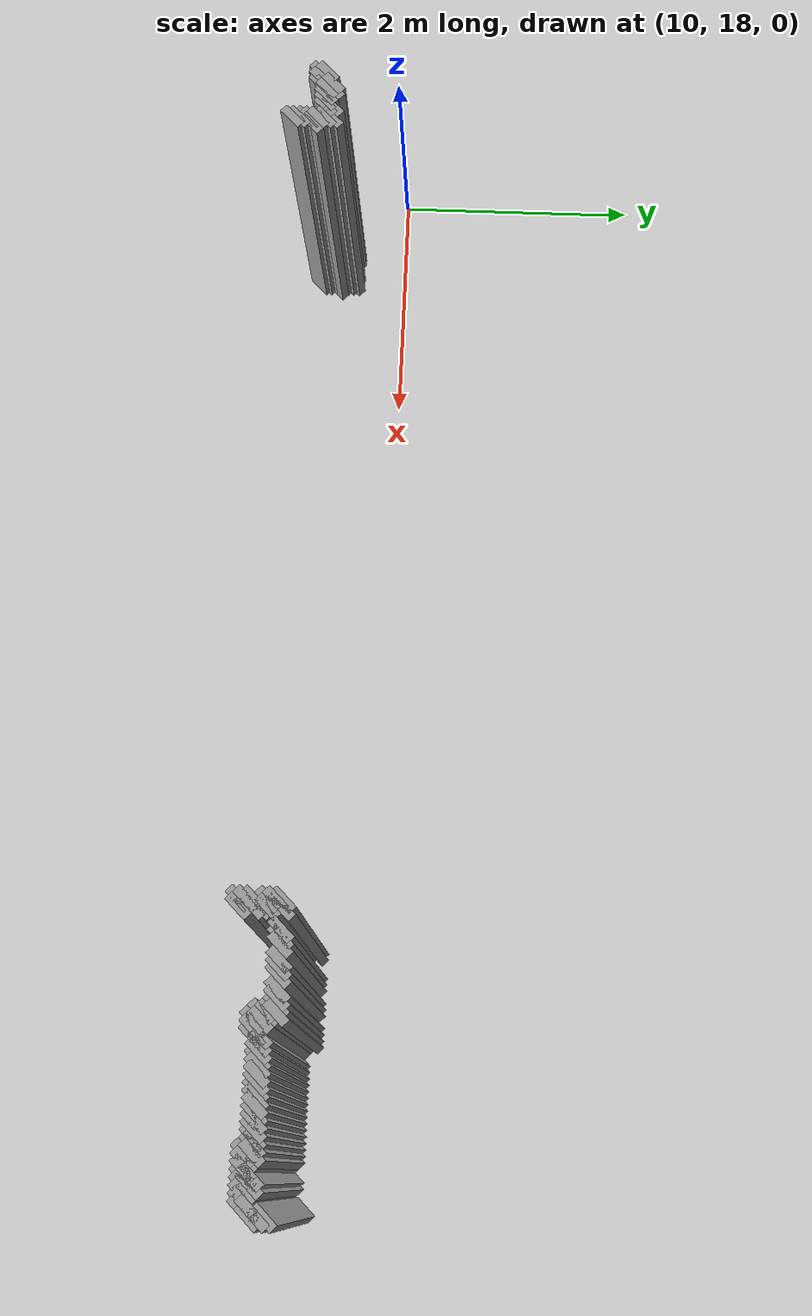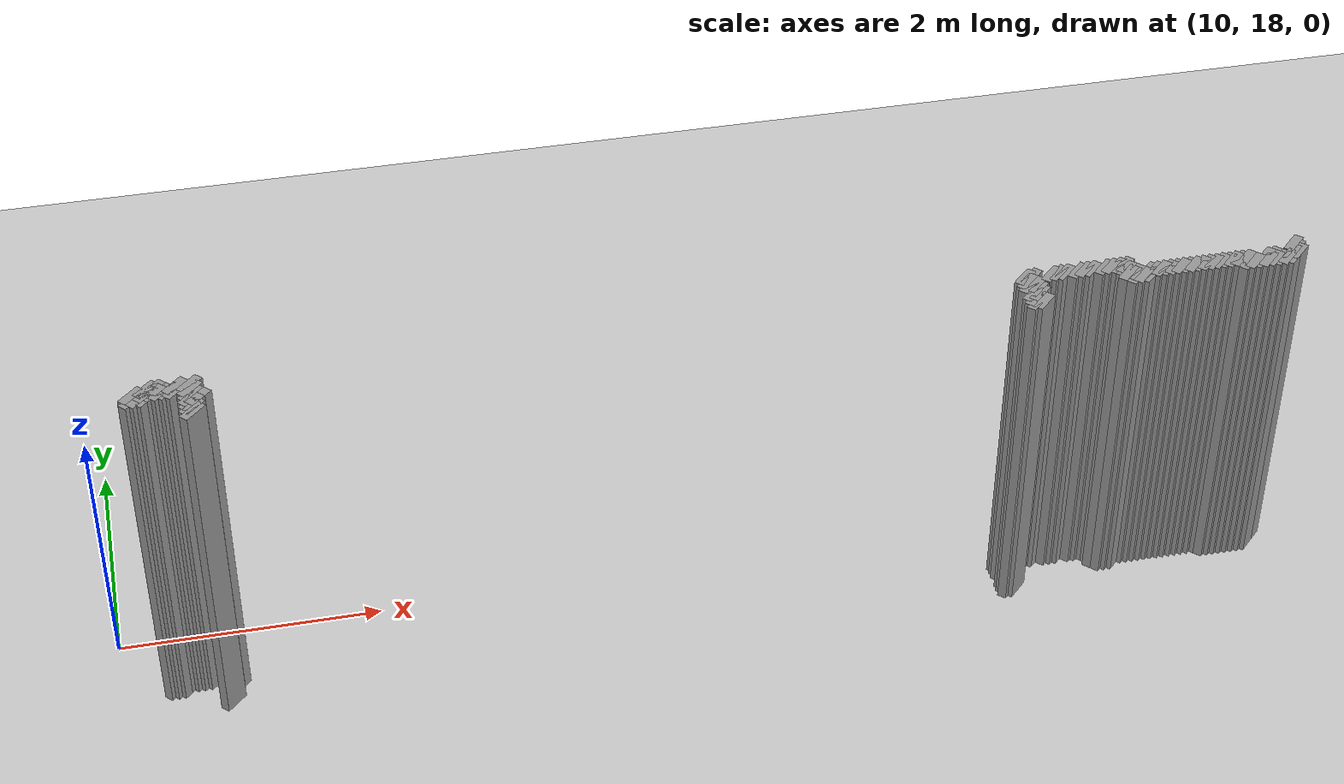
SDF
<sdf version="1.5">
 <world name="default">
  <include><uri>model://ground_plane</uri></include>
  <include><uri>model://sun</uri></include>
  <model name="grey_wall_312">
   <static>1</static>
   <link name="link">
    <pose>10.5 17.55  1.4 0 0 -0.785398163397</pose>
    <collision name="collision"><geometry><box><size>0.0707106781187 .2  2.8</size></box></geometry></collision>
    <visual name="visual">
     <cast_shadows>0</cast_shadows>
     <geometry><box><size>0.0707106781187 .2  2.8</size></box></geometry>
     <material>
      <script>
       <uri>model://grey_wall/materials/scripts</uri>
       <uri>model://grey_wall/materials/textures</uri>
       <name>vrc/grey_wall</name>
      </script>
     </material>
    </visual>
   </link>
  </model>
  <model name="grey_wall_313">
   <static>1</static>
   <link name="link">
    <pose>10.55 17.55  1.4 0 0 -0.785398163397</pose>
    <collision name="collision"><geometry><box><size>0.0707106781187 .2  2.8</size></box></geometry></collision>
    <visual name="visual">
     <cast_shadows>0</cast_shadows>
     <geometry><box><size>0.0707106781187 .2  2.8</size></box></geometry>
     <material>
      <script>
       <uri>model://grey_wall/materials/scripts</uri>
       <uri>model://grey_wall/materials/textures</uri>
       <name>vrc/grey_wall</name>
      </script>
     </material>
    </visual>
   </link>
  </model>
  <model name="grey_wall_314">
   <static>1</static>
   <link name="link">
    <pose>10.7 17.55  1.4 0 0 -0.785398163397</pose>
    <collision name="collision"><geometry><box><size>0.0707106781187 .2  2.8</size></box></geometry></collision>
    <visual name="visual">
     <cast_shadows>0</cast_shadows>
     <geometry><box><size>0.0707106781187 .2  2.8</size></box></geometry>
     <material>
      <script>
       <uri>model://grey_wall/materials/scripts</uri>
       <uri>model://grey_wall/materials/textures</uri>
       <name>vrc/grey_wall</name>
      </script>
     </material>
    </visual>
   </link>
  </model>
  <model name="grey_wall_315">
   <static>1</static>
   <link name="link">
    <pose>10.8 17.55  1.4 0 0 -0.785398163397</pose>
    <collision name="collision"><geometry><box><size>0.0707106781187 .2  2.8</size></box></geometry></collision>
    <visual name="visual">
     <cast_shadows>0</cast_shadows>
     <geometry><box><size>0.0707106781187 .2  2.8</size></box></geometry>
     <material>
      <script>
       <uri>model://grey_wall/materials/scripts</uri>
       <uri>model://grey_wall/materials/textures</uri>
       <name>vrc/grey_wall</name>
      </script>
     </material>
    </visual>
   </link>
  </model>
  <model name="grey_wall_316">
   <static>1</static>
   <link name="link">
    <pose>16.8 17.55  1.4 0 0 -0.785398163397</pose>
    <collision name="collision"><geometry><box><size>0.0707106781187 .2  2.8</size></box></geometry></collision>
    <visual name="visual">
     <cast_shadows>0</cast_shadows>
     <geometry><box><size>0.0707106781187 .2  2.8</size></box></geometry>
     <material>
      <script>
       <uri>model://grey_wall/materials/scripts</uri>
       <uri>model://grey_wall/materials/textures</uri>
       <name>vrc/grey_wall</name>
      </script>
     </material>
    </visual>
   </link>
  </model>
  <model name="grey_wall_317">
   <static>1</static>
   <link name="link">
    <pose>16.85 17.55  1.4 0 0 -0.785398163397</pose>
    <collision name="collision"><geometry><box><size>0.0707106781187 .2  2.8</size></box></geometry></collision>
    <visual name="visual">
     <cast_shadows>0</cast_shadows>
     <geometry><box><size>0.0707106781187 .2  2.8</size></box></geometry>
     <material>
      <script>
       <uri>model://grey_wall/materials/scripts</uri>
       <uri>model://grey_wall/materials/textures</uri>
       <name>vrc/grey_wall</name>
      </script>
     </material>
    </visual>
   </link>
  </model>
  <model name="grey_wall_318">
   <static>1</static>
   <link name="link">
    <pose>17.0 17.55  1.4 0 0 -0.785398163397</pose>
    <collision name="collision"><geometry><box><size>0.0707106781187 .2  2.8</size></box></geometry></collision>
    <visual name="visual">
     <cast_shadows>0</cast_shadows>
     <geometry><box><size>0.0707106781187 .2  2.8</size></box></geometry>
     <material>
      <script>
       <uri>model://grey_wall/materials/scripts</uri>
       <uri>model://grey_wall/materials/textures</uri>
       <name>vrc/grey_wall</name>
      </script>
     </material>
    </visual>
   </link>
  </model>
  <model name="grey_wall_319">
   <static>1</static>
   <link name="link">
    <pose>17.05 17.55  1.4 0 0 -0.785398163397</pose>
    <collision name="collision"><geometry><box><size>0.0707106781187 .2  2.8</size></box></geometry></collision>
    <visual name="visual">
     <cast_shadows>0</cast_shadows>
     <geometry><box><size>0.0707106781187 .2  2.8</size></box></geometry>
     <material>
      <script>
       <uri>model://grey_wall/materials/scripts</uri>
       <uri>model://grey_wall/materials/textures</uri>
       <name>vrc/grey_wall</name>
      </script>
     </material>
    </visual>
   </link>
  </model>
  <model name="grey_wall_320">
   <static>1</static>
   <link name="link">
    <pose>17.1 17.55  1.4 0 0 -0.785398163397</pose>
    <collision name="collision"><geometry><box><size>0.0707106781187 .2  2.8</size></box></geometry></collision>
    <visual name="visual">
     <cast_shadows>0</cast_shadows>
     <geometry><box><size>0.0707106781187 .2  2.8</size></box></geometry>
     <material>
      <script>
       <uri>model://grey_wall/materials/scripts</uri>
       <uri>model://grey_wall/materials/textures</uri>
       <name>vrc/grey_wall</name>
      </script>
     </material>
    </visual>
   </link>
  </model>
  <model name="grey_wall_321">
   <static>1</static>
   <link name="link">
    <pose>17.2 17.55  1.4 0 0 -0.785398163397</pose>
    <collision name="collision"><geometry><box><size>0.0707106781187 .2  2.8</size></box></geometry></collision>
    <visual name="visual">
     <cast_shadows>0</cast_shadows>
     <geometry><box><size>0.0707106781187 .2  2.8</size></box></geometry>
     <material>
      <script>
       <uri>model://grey_wall/materials/scripts</uri>
       <uri>model://grey_wall/materials/textures</uri>
       <name>vrc/grey_wall</name>
      </script>
     </material>
    </visual>
   </link>
  </model>
  <model name="grey_wall_322">
   <static>1</static>
   <link name="link">
    <pose>17.25 17.55  1.4 0 0 -0.785398163397</pose>
    <collision name="collision"><geometry><box><size>0.0707106781187 .2  2.8</size></box></geometry></collision>
    <visual name="visual">
     <cast_shadows>0</cast_shadows>
     <geometry><box><size>0.0707106781187 .2  2.8</size></box></geometry>
     <material>
      <script>
       <uri>model://grey_wall/materials/scripts</uri>
       <uri>model://grey_wall/materials/textures</uri>
       <name>vrc/grey_wall</name>
      </script>
     </material>
    </visual>
   </link>
  </model>
  <model name="grey_wall_323">
   <static>1</static>
   <link name="link">
    <pose>17.3 17.55  1.4 0 0 -0.785398163397</pose>
    <collision name="collision"><geometry><box><size>0.0707106781187 .2  2.8</size></box></geometry></collision>
    <visual name="visual">
     <cast_shadows>0</cast_shadows>
     <geometry><box><size>0.0707106781187 .2  2.8</size></box></geometry>
     <material>
      <script>
       <uri>model://grey_wall/materials/scripts</uri>
       <uri>model://grey_wall/materials/textures</uri>
       <name>vrc/grey_wall</name>
      </script>
     </material>
    </visual>
   </link>
  </model>
  <model name="grey_wall_324">
   <static>1</static>
   <link name="link">
    <pose>17.4 17.55  1.4 0 0 -0.785398163397</pose>
    <collision name="collision"><geometry><box><size>0.0707106781187 .2  2.8</size></box></geometry></collision>
    <visual name="visual">
     <cast_shadows>0</cast_shadows>
     <geometry><box><size>0.0707106781187 .2  2.8</size></box></geometry>
     <material>
      <script>
       <uri>model://grey_wall/materials/scripts</uri>
       <uri>model://grey_wall/materials/textures</uri>
       <name>vrc/grey_wall</name>
      </script>
     </material>
    </visual>
   </link>
  </model>
  <model name="grey_wall_325">
   <static>1</static>
   <link name="link">
    <pose>17.45 17.55  1.4 0 0 -0.785398163397</pose>
    <collision name="collision"><geometry><box><size>0.0707106781187 .2  2.8</size></box></geometry></collision>
    <visual name="visual">
     <cast_shadows>0</cast_shadows>
     <geometry><box><size>0.0707106781187 .2  2.8</size></box></geometry>
     <material>
      <script>
       <uri>model://grey_wall/materials/scripts</uri>
       <uri>model://grey_wall/materials/textures</uri>
       <name>vrc/grey_wall</name>
      </script>
     </material>
    </visual>
   </link>
  </model>
  <model name="grey_wall_326">
   <static>1</static>
   <link name="link">
    <pose>17.5 17.55  1.4 0 0 -0.785398163397</pose>
    <collision name="collision"><geometry><box><size>0.0707106781187 .2  2.8</size></box></geometry></collision>
    <visual name="visual">
     <cast_shadows>0</cast_shadows>
     <geometry><box><size>0.0707106781187 .2  2.8</size></box></geometry>
     <material>
      <script>
       <uri>model://grey_wall/materials/scripts</uri>
       <uri>model://grey_wall/materials/textures</uri>
       <name>vrc/grey_wall</name>
      </script>
     </material>
    </visual>
   </link>
  </model>
  <model name="grey_wall_327">
   <static>1</static>
   <link name="link">
    <pose>17.55 17.55  1.4 0 0 -0.785398163397</pose>
    <collision name="collision"><geometry><box><size>0.0707106781187 .2  2.8</size></box></geometry></collision>
    <visual name="visual">
     <cast_shadows>0</cast_shadows>
     <geometry><box><size>0.0707106781187 .2  2.8</size></box></geometry>
     <material>
      <script>
       <uri>model://grey_wall/materials/scripts</uri>
       <uri>model://grey_wall/materials/textures</uri>
       <name>vrc/grey_wall</name>
      </script>
     </material>
    </visual>
   </link>
  </model>
  <model name="grey_wall_328">
   <static>1</static>
   <link name="link">
    <pose>18.85 17.55  1.4 0 0 -0.785398163397</pose>
    <collision name="collision"><geometry><box><size>0.0707106781187 .2  2.8</size></box></geometry></collision>
    <visual name="visual">
     <cast_shadows>0</cast_shadows>
     <geometry><box><size>0.0707106781187 .2  2.8</size></box></geometry>
     <material>
      <script>
       <uri>model://grey_wall/materials/scripts</uri>
       <uri>model://grey_wall/materials/textures</uri>
       <name>vrc/grey_wall</name>
      </script>
     </material>
    </visual>
   </link>
  </model>
  <model name="grey_wall_329">
   <static>1</static>
   <link name="link">
    <pose>10.4 17.5  1.4 0 0 -0.785398163397</pose>
    <collision name="collision"><geometry><box><size>0.0707106781187 .2  2.8</size></box></geometry></collision>
    <visual name="visual">
     <cast_shadows>0</cast_shadows>
     <geometry><box><size>0.0707106781187 .2  2.8</size></box></geometry>
     <material>
      <script>
       <uri>model://grey_wall/materials/scripts</uri>
       <uri>model://grey_wall/materials/textures</uri>
       <name>vrc/grey_wall</name>
      </script>
     </material>
    </visual>
   </link>
  </model>
  <model name="grey_wall_330">
   <static>1</static>
   <link name="link">
    <pose>10.5 17.5  1.4 0 0 -0.785398163397</pose>
    <collision name="collision"><geometry><box><size>0.0707106781187 .2  2.8</size></box></geometry></collision>
    <visual name="visual">
     <cast_shadows>0</cast_shadows>
     <geometry><box><size>0.0707106781187 .2  2.8</size></box></geometry>
     <material>
      <script>
       <uri>model://grey_wall/materials/scripts</uri>
       <uri>model://grey_wall/materials/textures</uri>
       <name>vrc/grey_wall</name>
      </script>
     </material>
    </visual>
   </link>
  </model>
  <model name="grey_wall_331">
   <static>1</static>
   <link name="link">
    <pose>10.55 17.5  1.4 0 0 -0.785398163397</pose>
    <collision name="collision"><geometry><box><size>0.0707106781187 .2  2.8</size></box></geometry></collision>
    <visual name="visual">
     <cast_shadows>0</cast_shadows>
     <geometry><box><size>0.0707106781187 .2  2.8</size></box></geometry>
     <material>
      <script>
       <uri>model://grey_wall/materials/scripts</uri>
       <uri>model://grey_wall/materials/textures</uri>
       <name>vrc/grey_wall</name>
      </script>
     </material>
    </visual>
   </link>
  </model>
  <model name="grey_wall_332">
   <static>1</static>
   <link name="link">
    <pose>10.6 17.5  1.4 0 0 -0.785398163397</pose>
    <collision name="collision"><geometry><box><size>0.0707106781187 .2  2.8</size></box></geometry></collision>
    <visual name="visual">
     <cast_shadows>0</cast_shadows>
     <geometry><box><size>0.0707106781187 .2  2.8</size></box></geometry>
     <material>
      <script>
       <uri>model://grey_wall/materials/scripts</uri>
       <uri>model://grey_wall/materials/textures</uri>
       <name>vrc/grey_wall</name>
      </script>
     </material>
    </visual>
   </link>
  </model>
  <model name="grey_wall_333">
   <static>1</static>
   <link name="link">
    <pose>10.65 17.5  1.4 0 0 -0.785398163397</pose>
    <collision name="collision"><geometry><box><size>0.0707106781187 .2  2.8</size></box></geometry></collision>
    <visual name="visual">
     <cast_shadows>0</cast_shadows>
     <geometry><box><size>0.0707106781187 .2  2.8</size></box></geometry>
     <material>
      <script>
       <uri>model://grey_wall/materials/scripts</uri>
       <uri>model://grey_wall/materials/textures</uri>
       <name>vrc/grey_wall</name>
      </script>
     </material>
    </visual>
   </link>
  </model>
  <model name="grey_wall_334">
   <static>1</static>
   <link name="link">
    <pose>10.7 17.5  1.4 0 0 -0.785398163397</pose>
    <collision name="collision"><geometry><box><size>0.0707106781187 .2  2.8</size></box></geometry></collision>
    <visual name="visual">
     <cast_shadows>0</cast_shadows>
     <geometry><box><size>0.0707106781187 .2  2.8</size></box></geometry>
     <material>
      <script>
       <uri>model://grey_wall/materials/scripts</uri>
       <uri>model://grey_wall/materials/textures</uri>
       <name>vrc/grey_wall</name>
      </script>
     </material>
    </visual>
   </link>
  </model>
  <model name="grey_wall_335">
   <static>1</static>
   <link name="link">
    <pose>10.8 17.5  1.4 0 0 -0.785398163397</pose>
    <collision name="collision"><geometry><box><size>0.0707106781187 .2  2.8</size></box></geometry></collision>
    <visual name="visual">
     <cast_shadows>0</cast_shadows>
     <geometry><box><size>0.0707106781187 .2  2.8</size></box></geometry>
     <material>
      <script>
       <uri>model://grey_wall/materials/scripts</uri>
       <uri>model://grey_wall/materials/textures</uri>
       <name>vrc/grey_wall</name>
      </script>
     </material>
    </visual>
   </link>
  </model>
  <model name="grey_wall_336">
   <static>1</static>
   <link name="link">
    <pose>16.8 17.5  1.4 0 0 -0.785398163397</pose>
    <collision name="collision"><geometry><box><size>0.0707106781187 .2  2.8</size></box></geometry></collision>
    <visual name="visual">
     <cast_shadows>0</cast_shadows>
     <geometry><box><size>0.0707106781187 .2  2.8</size></box></geometry>
     <material>
      <script>
       <uri>model://grey_wall/materials/scripts</uri>
       <uri>model://grey_wall/materials/textures</uri>
       <name>vrc/grey_wall</name>
      </script>
     </material>
    </visual>
   </link>
  </model>
  <model name="grey_wall_337">
   <static>1</static>
   <link name="link">
    <pose>17.55 17.5  1.4 0 0 -0.785398163397</pose>
    <collision name="collision"><geometry><box><size>0.0707106781187 .2  2.8</size></box></geometry></collision>
    <visual name="visual">
     <cast_shadows>0</cast_shadows>
     <geometry><box><size>0.0707106781187 .2  2.8</size></box></geometry>
     <material>
      <script>
       <uri>model://grey_wall/materials/scripts</uri>
       <uri>model://grey_wall/materials/textures</uri>
       <name>vrc/grey_wall</name>
      </script>
     </material>
    </visual>
   </link>
  </model>
  <model name="grey_wall_338">
   <static>1</static>
   <link name="link">
    <pose>18.85 17.5  1.4 0 0 -0.785398163397</pose>
    <collision name="collision"><geometry><box><size>0.0707106781187 .2  2.8</size></box></geometry></collision>
    <visual name="visual">
     <cast_shadows>0</cast_shadows>
     <geometry><box><size>0.0707106781187 .2  2.8</size></box></geometry>
     <material>
      <script>
       <uri>model://grey_wall/materials/scripts</uri>
       <uri>model://grey_wall/materials/textures</uri>
       <name>vrc/grey_wall</name>
      </script>
     </material>
    </visual>
   </link>
  </model>
  <model name="grey_wall_339">
   <static>1</static>
   <link name="link">
    <pose>10.4 17.45  1.4 0 0 -0.785398163397</pose>
    <collision name="collision"><geometry><box><size>0.0707106781187 .2  2.8</size></box></geometry></collision>
    <visual name="visual">
     <cast_shadows>0</cast_shadows>
     <geometry><box><size>0.0707106781187 .2  2.8</size></box></geometry>
     <material>
      <script>
       <uri>model://grey_wall/materials/scripts</uri>
       <uri>model://grey_wall/materials/textures</uri>
       <name>vrc/grey_wall</name>
      </script>
     </material>
    </visual>
   </link>
  </model>
  <model name="grey_wall_340">
   <static>1</static>
   <link name="link">
    <pose>10.45 17.45  1.4 0 0 -0.785398163397</pose>
    <collision name="collision"><geometry><box><size>0.0707106781187 .2  2.8</size></box></geometry></collision>
    <visual name="visual">
     <cast_shadows>0</cast_shadows>
     <geometry><box><size>0.0707106781187 .2  2.8</size></box></geometry>
     <material>
      <script>
       <uri>model://grey_wall/materials/scripts</uri>
       <uri>model://grey_wall/materials/textures</uri>
       <name>vrc/grey_wall</name>
      </script>
     </material>
    </visual>
   </link>
  </model>
  <model name="grey_wall_341">
   <static>1</static>
   <link name="link">
    <pose>10.5 17.45  1.4 0 0 -0.785398163397</pose>
    <collision name="collision"><geometry><box><size>0.0707106781187 .2  2.8</size></box></geometry></collision>
    <visual name="visual">
     <cast_shadows>0</cast_shadows>
     <geometry><box><size>0.0707106781187 .2  2.8</size></box></geometry>
     <material>
      <script>
       <uri>model://grey_wall/materials/scripts</uri>
       <uri>model://grey_wall/materials/textures</uri>
       <name>vrc/grey_wall</name>
      </script>
     </material>
    </visual>
   </link>
  </model>
  <model name="grey_wall_342">
   <static>1</static>
   <link name="link">
    <pose>10.8 17.45  1.4 0 0 -0.785398163397</pose>
    <collision name="collision"><geometry><box><size>0.0707106781187 .2  2.8</size></box></geometry></collision>
    <visual name="visual">
     <cast_shadows>0</cast_shadows>
     <geometry><box><size>0.0707106781187 .2  2.8</size></box></geometry>
     <material>
      <script>
       <uri>model://grey_wall/materials/scripts</uri>
       <uri>model://grey_wall/materials/textures</uri>
       <name>vrc/grey_wall</name>
      </script>
     </material>
    </visual>
   </link>
  </model>
  <model name="grey_wall_343">
   <static>1</static>
   <link name="link">
    <pose>16.8 17.45  1.4 0 0 -0.785398163397</pose>
    <collision name="collision"><geometry><box><size>0.0707106781187 .2  2.8</size></box></geometry></collision>
    <visual name="visual">
     <cast_shadows>0</cast_shadows>
     <geometry><box><size>0.0707106781187 .2  2.8</size></box></geometry>
     <material>
      <script>
       <uri>model://grey_wall/materials/scripts</uri>
       <uri>model://grey_wall/materials/textures</uri>
       <name>vrc/grey_wall</name>
      </script>
     </material>
    </visual>
   </link>
  </model>
  <model name="grey_wall_344">
   <static>1</static>
   <link name="link">
    <pose>16.85 17.45  1.4 0 0 -0.785398163397</pose>
    <collision name="collision"><geometry><box><size>0.0707106781187 .2  2.8</size></box></geometry></collision>
    <visual name="visual">
     <cast_shadows>0</cast_shadows>
     <geometry><box><size>0.0707106781187 .2  2.8</size></box></geometry>
     <material>
      <script>
       <uri>model://grey_wall/materials/scripts</uri>
       <uri>model://grey_wall/materials/textures</uri>
       <name>vrc/grey_wall</name>
      </script>
     </material>
    </visual>
   </link>
  </model>
  <model name="grey_wall_345">
   <static>1</static>
   <link name="link">
    <pose>17.55 17.45  1.4 0 0 -0.785398163397</pose>
    <collision name="collision"><geometry><box><size>0.0707106781187 .2  2.8</size></box></geometry></collision>
    <visual name="visual">
     <cast_shadows>0</cast_shadows>
     <geometry><box><size>0.0707106781187 .2  2.8</size></box></geometry>
     <material>
      <script>
       <uri>model://grey_wall/materials/scripts</uri>
       <uri>model://grey_wall/materials/textures</uri>
       <name>vrc/grey_wall</name>
      </script>
     </material>
    </visual>
   </link>
  </model>
  <model name="grey_wall_346">
   <static>1</static>
   <link name="link">
    <pose>17.6 17.45  1.4 0 0 -0.785398163397</pose>
    <collision name="collision"><geometry><box><size>0.0707106781187 .2  2.8</size></box></geometry></collision>
    <visual name="visual">
     <cast_shadows>0</cast_shadows>
     <geometry><box><size>0.0707106781187 .2  2.8</size></box></geometry>
     <material>
      <script>
       <uri>model://grey_wall/materials/scripts</uri>
       <uri>model://grey_wall/materials/textures</uri>
       <name>vrc/grey_wall</name>
      </script>
     </material>
    </visual>
   </link>
  </model>
  <model name="grey_wall_347">
   <static>1</static>
   <link name="link">
    <pose>17.7 17.45  1.4 0 0 -0.785398163397</pose>
    <collision name="collision"><geometry><box><size>0.0707106781187 .2  2.8</size></box></geometry></collision>
    <visual name="visual">
     <cast_shadows>0</cast_shadows>
     <geometry><box><size>0.0707106781187 .2  2.8</size></box></geometry>
     <material>
      <script>
       <uri>model://grey_wall/materials/scripts</uri>
       <uri>model://grey_wall/materials/textures</uri>
       <name>vrc/grey_wall</name>
      </script>
     </material>
    </visual>
   </link>
  </model>
  <model name="grey_wall_348">
   <static>1</static>
   <link name="link">
    <pose>17.75 17.45  1.4 0 0 -0.785398163397</pose>
    <collision name="collision"><geometry><box><size>0.0707106781187 .2  2.8</size></box></geometry></collision>
    <visual name="visual">
     <cast_shadows>0</cast_shadows>
     <geometry><box><size>0.0707106781187 .2  2.8</size></box></geometry>
     <material>
      <script>
       <uri>model://grey_wall/materials/scripts</uri>
       <uri>model://grey_wall/materials/textures</uri>
       <name>vrc/grey_wall</name>
      </script>
     </material>
    </visual>
   </link>
  </model>
  <model name="grey_wall_349">
   <static>1</static>
   <link name="link">
    <pose>17.8 17.45  1.4 0 0 -0.785398163397</pose>
    <collision name="collision"><geometry><box><size>0.0707106781187 .2  2.8</size></box></geometry></collision>
    <visual name="visual">
     <cast_shadows>0</cast_shadows>
     <geometry><box><size>0.0707106781187 .2  2.8</size></box></geometry>
     <material>
      <script>
       <uri>model://grey_wall/materials/scripts</uri>
       <uri>model://grey_wall/materials/textures</uri>
       <name>vrc/grey_wall</name>
      </script>
     </material>
    </visual>
   </link>
  </model>
  <model name="grey_wall_350">
   <static>1</static>
   <link name="link">
    <pose>17.85 17.45  1.4 0 0 -0.785398163397</pose>
    <collision name="collision"><geometry><box><size>0.0707106781187 .2  2.8</size></box></geometry></collision>
    <visual name="visual">
     <cast_shadows>0</cast_shadows>
     <geometry><box><size>0.0707106781187 .2  2.8</size></box></geometry>
     <material>
      <script>
       <uri>model://grey_wall/materials/scripts</uri>
       <uri>model://grey_wall/materials/textures</uri>
       <name>vrc/grey_wall</name>
      </script>
     </material>
    </visual>
   </link>
  </model>
  <model name="grey_wall_351">
   <static>1</static>
   <link name="link">
    <pose>17.9 17.45  1.4 0 0 -0.785398163397</pose>
    <collision name="collision"><geometry><box><size>0.0707106781187 .2  2.8</size></box></geometry></collision>
    <visual name="visual">
     <cast_shadows>0</cast_shadows>
     <geometry><box><size>0.0707106781187 .2  2.8</size></box></geometry>
     <material>
      <script>
       <uri>model://grey_wall/materials/scripts</uri>
       <uri>model://grey_wall/materials/textures</uri>
       <name>vrc/grey_wall</name>
      </script>
     </material>
    </visual>
   </link>
  </model>
  <model name="grey_wall_352">
   <static>1</static>
   <link name="link">
    <pose>17.95 17.45  1.4 0 0 -0.785398163397</pose>
    <collision name="collision"><geometry><box><size>0.0707106781187 .2  2.8</size></box></geometry></collision>
    <visual name="visual">
     <cast_shadows>0</cast_shadows>
     <geometry><box><size>0.0707106781187 .2  2.8</size></box></geometry>
     <material>
      <script>
       <uri>model://grey_wall/materials/scripts</uri>
       <uri>model://grey_wall/materials/textures</uri>
       <name>vrc/grey_wall</name>
      </script>
     </material>
    </visual>
   </link>
  </model>
  <model name="grey_wall_353">
   <static>1</static>
   <link name="link">
    <pose>18.0 17.45  1.4 0 0 -0.785398163397</pose>
    <collision name="collision"><geometry><box><size>0.0707106781187 .2  2.8</size></box></geometry></collision>
    <visual name="visual">
     <cast_shadows>0</cast_shadows>
     <geometry><box><size>0.0707106781187 .2  2.8</size></box></geometry>
     <material>
      <script>
       <uri>model://grey_wall/materials/scripts</uri>
       <uri>model://grey_wall/materials/textures</uri>
       <name>vrc/grey_wall</name>
      </script>
     </material>
    </visual>
   </link>
  </model>
  <model name="grey_wall_354">
   <static>1</static>
   <link name="link">
    <pose>18.05 17.45  1.4 0 0 -0.785398163397</pose>
    <collision name="collision"><geometry><box><size>0.0707106781187 .2  2.8</size></box></geometry></collision>
    <visual name="visual">
     <cast_shadows>0</cast_shadows>
     <geometry><box><size>0.0707106781187 .2  2.8</size></box></geometry>
     <material>
      <script>
       <uri>model://grey_wall/materials/scripts</uri>
       <uri>model://grey_wall/materials/textures</uri>
       <name>vrc/grey_wall</name>
      </script>
     </material>
    </visual>
   </link>
  </model>
  <model name="grey_wall_355">
   <static>1</static>
   <link name="link">
    <pose>18.1 17.45  1.4 0 0 -0.785398163397</pose>
    <collision name="collision"><geometry><box><size>0.0707106781187 .2  2.8</size></box></geometry></collision>
    <visual name="visual">
     <cast_shadows>0</cast_shadows>
     <geometry><box><size>0.0707106781187 .2  2.8</size></box></geometry>
     <material>
      <script>
       <uri>model://grey_wall/materials/scripts</uri>
       <uri>model://grey_wall/materials/textures</uri>
       <name>vrc/grey_wall</name>
      </script>
     </material>
    </visual>
   </link>
  </model>
  <model name="grey_wall_356">
   <static>1</static>
   <link name="link">
    <pose>18.15 17.45  1.4 0 0 -0.785398163397</pose>
    <collision name="collision"><geometry><box><size>0.0707106781187 .2  2.8</size></box></geometry></collision>
    <visual name="visual">
     <cast_shadows>0</cast_shadows>
     <geometry><box><size>0.0707106781187 .2  2.8</size></box></geometry>
     <material>
      <script>
       <uri>model://grey_wall/materials/scripts</uri>
       <uri>model://grey_wall/materials/textures</uri>
       <name>vrc/grey_wall</name>
      </script>
     </material>
    </visual>
   </link>
  </model>
  <model name="grey_wall_357">
   <static>1</static>
   <link name="link">
    <pose>18.2 17.45  1.4 0 0 -0.785398163397</pose>
    <collision name="collision"><geometry><box><size>0.0707106781187 .2  2.8</size></box></geometry></collision>
    <visual name="visual">
     <cast_shadows>0</cast_shadows>
     <geometry><box><size>0.0707106781187 .2  2.8</size></box></geometry>
     <material>
      <script>
       <uri>model://grey_wall/materials/scripts</uri>
       <uri>model://grey_wall/materials/textures</uri>
       <name>vrc/grey_wall</name>
      </script>
     </material>
    </visual>
   </link>
  </model>
  <model name="grey_wall_358">
   <static>1</static>
   <link name="link">
    <pose>18.25 17.45  1.4 0 0 -0.785398163397</pose>
    <collision name="collision"><geometry><box><size>0.0707106781187 .2  2.8</size></box></geometry></collision>
    <visual name="visual">
     <cast_shadows>0</cast_shadows>
     <geometry><box><size>0.0707106781187 .2  2.8</size></box></geometry>
     <material>
      <script>
       <uri>model://grey_wall/materials/scripts</uri>
       <uri>model://grey_wall/materials/textures</uri>
       <name>vrc/grey_wall</name>
      </script>
     </material>
    </visual>
   </link>
  </model>
  <model name="grey_wall_359">
   <static>1</static>
   <link name="link">
    <pose>18.3 17.45  1.4 0 0 -0.785398163397</pose>
    <collision name="collision"><geometry><box><size>0.0707106781187 .2  2.8</size></box></geometry></collision>
    <visual name="visual">
     <cast_shadows>0</cast_shadows>
     <geometry><box><size>0.0707106781187 .2  2.8</size></box></geometry>
     <material>
      <script>
       <uri>model://grey_wall/materials/scripts</uri>
       <uri>model://grey_wall/materials/textures</uri>
       <name>vrc/grey_wall</name>
      </script>
     </material>
    </visual>
   </link>
  </model>
  <model name="grey_wall_360">
   <static>1</static>
   <link name="link">
    <pose>18.35 17.45  1.4 0 0 -0.785398163397</pose>
    <collision name="collision"><geometry><box><size>0.0707106781187 .2  2.8</size></box></geometry></collision>
    <visual name="visual">
     <cast_shadows>0</cast_shadows>
     <geometry><box><size>0.0707106781187 .2  2.8</size></box></geometry>
     <material>
      <script>
       <uri>model://grey_wall/materials/scripts</uri>
       <uri>model://grey_wall/materials/textures</uri>
       <name>vrc/grey_wall</name>
      </script>
     </material>
    </visual>
   </link>
  </model>
  <model name="grey_wall_361">
   <static>1</static>
   <link name="link">
    <pose>18.4 17.45  1.4 0 0 -0.785398163397</pose>
    <collision name="collision"><geometry><box><size>0.0707106781187 .2  2.8</size></box></geometry></collision>
    <visual name="visual">
     <cast_shadows>0</cast_shadows>
     <geometry><box><size>0.0707106781187 .2  2.8</size></box></geometry>
     <material>
      <script>
       <uri>model://grey_wall/materials/scripts</uri>
       <uri>model://grey_wall/materials/textures</uri>
       <name>vrc/grey_wall</name>
      </script>
     </material>
    </visual>
   </link>
  </model>
  <model name="grey_wall_362">
   <static>1</static>
   <link name="link">
    <pose>18.45 17.45  1.4 0 0 -0.785398163397</pose>
    <collision name="collision"><geometry><box><size>0.0707106781187 .2  2.8</size></box></geometry></collision>
    <visual name="visual">
     <cast_shadows>0</cast_shadows>
     <geometry><box><size>0.0707106781187 .2  2.8</size></box></geometry>
     <material>
      <script>
       <uri>model://grey_wall/materials/scripts</uri>
       <uri>model://grey_wall/materials/textures</uri>
       <name>vrc/grey_wall</name>
      </script>
     </material>
    </visual>
   </link>
  </model>
  <model name="grey_wall_363">
   <static>1</static>
   <link name="link">
    <pose>18.6 17.45  1.4 0 0 -0.785398163397</pose>
    <collision name="collision"><geometry><box><size>0.0707106781187 .2  2.8</size></box></geometry></collision>
    <visual name="visual">
     <cast_shadows>0</cast_shadows>
     <geometry><box><size>0.0707106781187 .2  2.8</size></box></geometry>
     <material>
      <script>
       <uri>model://grey_wall/materials/scripts</uri>
       <uri>model://grey_wall/materials/textures</uri>
       <name>vrc/grey_wall</name>
      </script>
     </material>
    </visual>
   </link>
  </model>
  <model name="grey_wall_364">
   <static>1</static>
   <link name="link">
    <pose>18.65 17.45  1.4 0 0 -0.785398163397</pose>
    <collision name="collision"><geometry><box><size>0.0707106781187 .2  2.8</size></box></geometry></collision>
    <visual name="visual">
     <cast_shadows>0</cast_shadows>
     <geometry><box><size>0.0707106781187 .2  2.8</size></box></geometry>
     <material>
      <script>
       <uri>model://grey_wall/materials/scripts</uri>
       <uri>model://grey_wall/materials/textures</uri>
       <name>vrc/grey_wall</name>
      </script>
     </material>
    </visual>
   </link>
  </model>
  <model name="grey_wall_365">
   <static>1</static>
   <link name="link">
    <pose>18.8 17.45  1.4 0 0 -0.785398163397</pose>
    <collision name="collision"><geometry><box><size>0.0707106781187 .2  2.8</size></box></geometry></collision>
    <visual name="visual">
     <cast_shadows>0</cast_shadows>
     <geometry><box><size>0.0707106781187 .2  2.8</size></box></geometry>
     <material>
      <script>
       <uri>model://grey_wall/materials/scripts</uri>
       <uri>model://grey_wall/materials/textures</uri>
       <name>vrc/grey_wall</name>
      </script>
     </material>
    </visual>
   </link>
  </model>
  <model name="grey_wall_366">
   <static>1</static>
   <link name="link">
    <pose>18.85 17.45  1.4 0 0 -0.785398163397</pose>
    <collision name="collision"><geometry><box><size>0.0707106781187 .2  2.8</size></box></geometry></collision>
    <visual name="visual">
     <cast_shadows>0</cast_shadows>
     <geometry><box><size>0.0707106781187 .2  2.8</size></box></geometry>
     <material>
      <script>
       <uri>model://grey_wall/materials/scripts</uri>
       <uri>model://grey_wall/materials/textures</uri>
       <name>vrc/grey_wall</name>
      </script>
     </material>
    </visual>
   </link>
  </model>
  <model name="grey_wall_367">
   <static>1</static>
   <link name="link">
    <pose>10.8 17.4  1.4 0 0 -0.785398163397</pose>
    <collision name="collision"><geometry><box><size>0.0707106781187 .2  2.8</size></box></geometry></collision>
    <visual name="visual">
     <cast_shadows>0</cast_shadows>
     <geometry><box><size>0.0707106781187 .2  2.8</size></box></geometry>
     <material>
      <script>
       <uri>model://grey_wall/materials/scripts</uri>
       <uri>model://grey_wall/materials/textures</uri>
       <name>vrc/grey_wall</name>
      </script>
     </material>
    </visual>
   </link>
  </model>
  <model name="grey_wall_368">
   <static>1</static>
   <link name="link">
    <pose>10.85 17.4  1.4 0 0 -0.785398163397</pose>
    <collision name="collision"><geometry><box><size>0.0707106781187 .2  2.8</size></box></geometry></collision>
    <visual name="visual">
     <cast_shadows>0</cast_shadows>
     <geometry><box><size>0.0707106781187 .2  2.8</size></box></geometry>
     <material>
      <script>
       <uri>model://grey_wall/materials/scripts</uri>
       <uri>model://grey_wall/materials/textures</uri>
       <name>vrc/grey_wall</name>
      </script>
     </material>
    </visual>
   </link>
  </model>
  <model name="grey_wall_369">
   <static>1</static>
   <link name="link">
    <pose>16.85 17.4  1.4 0 0 -0.785398163397</pose>
    <collision name="collision"><geometry><box><size>0.0707106781187 .2  2.8</size></box></geometry></collision>
    <visual name="visual">
     <cast_shadows>0</cast_shadows>
     <geometry><box><size>0.0707106781187 .2  2.8</size></box></geometry>
     <material>
      <script>
       <uri>model://grey_wall/materials/scripts</uri>
       <uri>model://grey_wall/materials/textures</uri>
       <name>vrc/grey_wall</name>
      </script>
     </material>
    </visual>
   </link>
  </model>
  <model name="grey_wall_370">
   <static>1</static>
   <link name="link">
    <pose>17.6 17.4  1.4 0 0 -0.785398163397</pose>
    <collision name="collision"><geometry><box><size>0.0707106781187 .2  2.8</size></box></geometry></collision>
    <visual name="visual">
     <cast_shadows>0</cast_shadows>
     <geometry><box><size>0.0707106781187 .2  2.8</size></box></geometry>
     <material>
      <script>
       <uri>model://grey_wall/materials/scripts</uri>
       <uri>model://grey_wall/materials/textures</uri>
       <name>vrc/grey_wall</name>
      </script>
     </material>
    </visual>
   </link>
  </model>
  <model name="grey_wall_371">
   <static>1</static>
   <link name="link">
    <pose>17.65 17.4  1.4 0 0 -0.785398163397</pose>
    <collision name="collision"><geometry><box><size>0.0707106781187 .2  2.8</size></box></geometry></collision>
    <visual name="visual">
     <cast_shadows>0</cast_shadows>
     <geometry><box><size>0.0707106781187 .2  2.8</size></box></geometry>
     <material>
      <script>
       <uri>model://grey_wall/materials/scripts</uri>
       <uri>model://grey_wall/materials/textures</uri>
       <name>vrc/grey_wall</name>
      </script>
     </material>
    </visual>
   </link>
  </model>
  <model name="grey_wall_372">
   <static>1</static>
   <link name="link">
    <pose>17.7 17.4  1.4 0 0 -0.785398163397</pose>
    <collision name="collision"><geometry><box><size>0.0707106781187 .2  2.8</size></box></geometry></collision>
    <visual name="visual">
     <cast_shadows>0</cast_shadows>
     <geometry><box><size>0.0707106781187 .2  2.8</size></box></geometry>
     <material>
      <script>
       <uri>model://grey_wall/materials/scripts</uri>
       <uri>model://grey_wall/materials/textures</uri>
       <name>vrc/grey_wall</name>
      </script>
     </material>
    </visual>
   </link>
  </model>
  <model name="grey_wall_373">
   <static>1</static>
   <link name="link">
    <pose>18.45 17.4  1.4 0 0 -0.785398163397</pose>
    <collision name="collision"><geometry><box><size>0.0707106781187 .2  2.8</size></box></geometry></collision>
    <visual name="visual">
     <cast_shadows>0</cast_shadows>
     <geometry><box><size>0.0707106781187 .2  2.8</size></box></geometry>
     <material>
      <script>
       <uri>model://grey_wall/materials/scripts</uri>
       <uri>model://grey_wall/materials/textures</uri>
       <name>vrc/grey_wall</name>
      </script>
     </material>
    </visual>
   </link>
  </model>
  <model name="grey_wall_374">
   <static>1</static>
   <link name="link">
    <pose>18.5 17.4  1.4 0 0 -0.785398163397</pose>
    <collision name="collision"><geometry><box><size>0.0707106781187 .2  2.8</size></box></geometry></collision>
    <visual name="visual">
     <cast_shadows>0</cast_shadows>
     <geometry><box><size>0.0707106781187 .2  2.8</size></box></geometry>
     <material>
      <script>
       <uri>model://grey_wall/materials/scripts</uri>
       <uri>model://grey_wall/materials/textures</uri>
       <name>vrc/grey_wall</name>
      </script>
     </material>
    </visual>
   </link>
  </model>
  <model name="grey_wall_375">
   <static>1</static>
   <link name="link">
    <pose>18.55 17.4  1.4 0 0 -0.785398163397</pose>
    <collision name="collision"><geometry><box><size>0.0707106781187 .2  2.8</size></box></geometry></collision>
    <visual name="visual">
     <cast_shadows>0</cast_shadows>
     <geometry><box><size>0.0707106781187 .2  2.8</size></box></geometry>
     <material>
      <script>
       <uri>model://grey_wall/materials/scripts</uri>
       <uri>model://grey_wall/materials/textures</uri>
       <name>vrc/grey_wall</name>
      </script>
     </material>
    </visual>
   </link>
  </model>
  <model name="grey_wall_376">
   <static>1</static>
   <link name="link">
    <pose>18.6 17.4  1.4 0 0 -0.785398163397</pose>
    <collision name="collision"><geometry><box><size>0.0707106781187 .2  2.8</size></box></geometry></collision>
    <visual name="visual">
     <cast_shadows>0</cast_shadows>
     <geometry><box><size>0.0707106781187 .2  2.8</size></box></geometry>
     <material>
      <script>
       <uri>model://grey_wall/materials/scripts</uri>
       <uri>model://grey_wall/materials/textures</uri>
       <name>vrc/grey_wall</name>
      </script>
     </material>
    </visual>
   </link>
  </model>
  <model name="grey_wall_377">
   <static>1</static>
   <link name="link">
    <pose>18.65 17.4  1.4 0 0 -0.785398163397</pose>
    <collision name="collision"><geometry><box><size>0.0707106781187 .2  2.8</size></box></geometry></collision>
    <visual name="visual">
     <cast_shadows>0</cast_shadows>
     <geometry><box><size>0.0707106781187 .2  2.8</size></box></geometry>
     <material>
      <script>
       <uri>model://grey_wall/materials/scripts</uri>
       <uri>model://grey_wall/materials/textures</uri>
       <name>vrc/grey_wall</name>
      </script>
     </material>
    </visual>
   </link>
  </model>
  <model name="grey_wall_378">
   <static>1</static>
   <link name="link">
    <pose>18.7 17.4  1.4 0 0 -0.785398163397</pose>
    <collision name="collision"><geometry><box><size>0.0707106781187 .2  2.8</size></box></geometry></collision>
    <visual name="visual">
     <cast_shadows>0</cast_shadows>
     <geometry><box><size>0.0707106781187 .2  2.8</size></box></geometry>
     <material>
      <script>
       <uri>model://grey_wall/materials/scripts</uri>
       <uri>model://grey_wall/materials/textures</uri>
       <name>vrc/grey_wall</name>
      </script>
     </material>
    </visual>
   </link>
  </model>
  <model name="grey_wall_379">
   <static>1</static>
   <link name="link">
    <pose>18.75 17.4  1.4 0 0 -0.785398163397</pose>
    <collision name="collision"><geometry><box><size>0.0707106781187 .2  2.8</size></box></geometry></collision>
    <visual name="visual">
     <cast_shadows>0</cast_shadows>
     <geometry><box><size>0.0707106781187 .2  2.8</size></box></geometry>
     <material>
      <script>
       <uri>model://grey_wall/materials/scripts</uri>
       <uri>model://grey_wall/materials/textures</uri>
       <name>vrc/grey_wall</name>
      </script>
     </material>
    </visual>
   </link>
  </model>
  <model name="grey_wall_380">
   <static>1</static>
   <link name="link">
    <pose>18.8 17.4  1.4 0 0 -0.785398163397</pose>
    <collision name="collision"><geometry><box><size>0.0707106781187 .2  2.8</size></box></geometry></collision>
    <visual name="visual">
     <cast_shadows>0</cast_shadows>
     <geometry><box><size>0.0707106781187 .2  2.8</size></box></geometry>
     <material>
      <script>
       <uri>model://grey_wall/materials/scripts</uri>
       <uri>model://grey_wall/materials/textures</uri>
       <name>vrc/grey_wall</name>
      </script>
     </material>
    </visual>
   </link>
  </model>
  <model name="grey_wall_381">
   <static>1</static>
   <link name="link">
    <pose>10.8 17.35  1.4 0 0 -0.785398163397</pose>
    <collision name="collision"><geometry><box><size>0.0707106781187 .2  2.8</size></box></geometry></collision>
    <visual name="visual">
     <cast_shadows>0</cast_shadows>
     <geometry><box><size>0.0707106781187 .2  2.8</size></box></geometry>
     <material>
      <script>
       <uri>model://grey_wall/materials/scripts</uri>
       <uri>model://grey_wall/materials/textures</uri>
       <name>vrc/grey_wall</name>
      </script>
     </material>
    </visual>
   </link>
  </model>
  <model name="grey_wall_382">
   <static>1</static>
   <link name="link">
    <pose>16.8 17.35  1.4 0 0 -0.785398163397</pose>
    <collision name="collision"><geometry><box><size>0.0707106781187 .2  2.8</size></box></geometry></collision>
    <visual name="visual">
     <cast_shadows>0</cast_shadows>
     <geometry><box><size>0.0707106781187 .2  2.8</size></box></geometry>
     <material>
      <script>
       <uri>model://grey_wall/materials/scripts</uri>
       <uri>model://grey_wall/materials/textures</uri>
       <name>vrc/grey_wall</name>
      </script>
     </material>
    </visual>
   </link>
  </model>
  <model name="grey_wall_383">
   <static>1</static>
   <link name="link">
    <pose>16.85 17.35  1.4 0 0 -0.785398163397</pose>
    <collision name="collision"><geometry><box><size>0.0707106781187 .2  2.8</size></box></geometry></collision>
    <visual name="visual">
     <cast_shadows>0</cast_shadows>
     <geometry><box><size>0.0707106781187 .2  2.8</size></box></geometry>
     <material>
      <script>
       <uri>model://grey_wall/materials/scripts</uri>
       <uri>model://grey_wall/materials/textures</uri>
       <name>vrc/grey_wall</name>
      </script>
     </material>
    </visual>
   </link>
  </model>
  <model name="grey_wall_384">
   <static>1</static>
   <link name="link">
    <pose>10.8 17.3  1.4 0 0 -0.785398163397</pose>
    <collision name="collision"><geometry><box><size>0.0707106781187 .2  2.8</size></box></geometry></collision>
    <visual name="visual">
     <cast_shadows>0</cast_shadows>
     <geometry><box><size>0.0707106781187 .2  2.8</size></box></geometry>
     <material>
      <script>
       <uri>model://grey_wall/materials/scripts</uri>
       <uri>model://grey_wall/materials/textures</uri>
       <name>vrc/grey_wall</name>
      </script>
     </material>
    </visual>
   </link>
  </model>
  <model name="grey_wall_385">
   <static>1</static>
   <link name="link">
    <pose>16.8 17.3  1.4 0 0 -0.785398163397</pose>
    <collision name="collision"><geometry><box><size>0.0707106781187 .2  2.8</size></box></geometry></collision>
    <visual name="visual">
     <cast_shadows>0</cast_shadows>
     <geometry><box><size>0.0707106781187 .2  2.8</size></box></geometry>
     <material>
      <script>
       <uri>model://grey_wall/materials/scripts</uri>
       <uri>model://grey_wall/materials/textures</uri>
       <name>vrc/grey_wall</name>
      </script>
     </material>
    </visual>
   </link>
  </model>
  <model name="grey_wall_386">
   <static>1</static>
   <link name="link">
    <pose>10.8 17.25  1.4 0 0 -0.785398163397</pose>
    <collision name="collision"><geometry><box><size>0.0707106781187 .2  2.8</size></box></geometry></collision>
    <visual name="visual">
     <cast_shadows>0</cast_shadows>
     <geometry><box><size>0.0707106781187 .2  2.8</size></box></geometry>
     <material>
      <script>
       <uri>model://grey_wall/materials/scripts</uri>
       <uri>model://grey_wall/materials/textures</uri>
       <name>vrc/grey_wall</name>
      </script>
     </material>
    </visual>
   </link>
  </model>
  <model name="grey_wall_387">
   <static>1</static>
   <link name="link">
    <pose>16.8 17.25  1.4 0 0 -0.785398163397</pose>
    <collision name="collision"><geometry><box><size>0.0707106781187 .2  2.8</size></box></geometry></collision>
    <visual name="visual">
     <cast_shadows>0</cast_shadows>
     <geometry><box><size>0.0707106781187 .2  2.8</size></box></geometry>
     <material>
      <script>
       <uri>model://grey_wall/materials/scripts</uri>
       <uri>model://grey_wall/materials/textures</uri>
       <name>vrc/grey_wall</name>
      </script>
     </material>
    </visual>
   </link>
  </model>
  <model name="grey_wall_388">
   <static>1</static>
   <link name="link">
    <pose>16.85 17.25  1.4 0 0 -0.785398163397</pose>
    <collision name="collision"><geometry><box><size>0.0707106781187 .2  2.8</size></box></geometry></collision>
    <visual name="visual">
     <cast_shadows>0</cast_shadows>
     <geometry><box><size>0.0707106781187 .2  2.8</size></box></geometry>
     <material>
      <script>
       <uri>model://grey_wall/materials/scripts</uri>
       <uri>model://grey_wall/materials/textures</uri>
       <name>vrc/grey_wall</name>
      </script>
     </material>
    </visual>
   </link>
  </model>
 </world>
</sdf>
